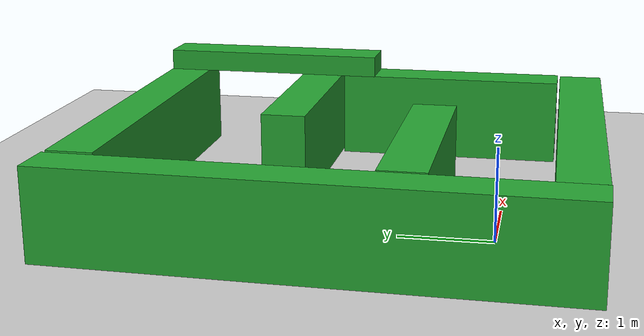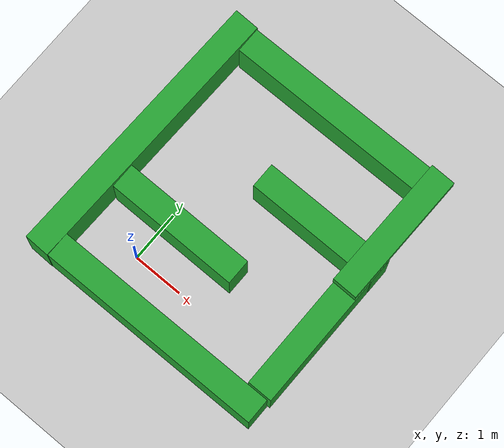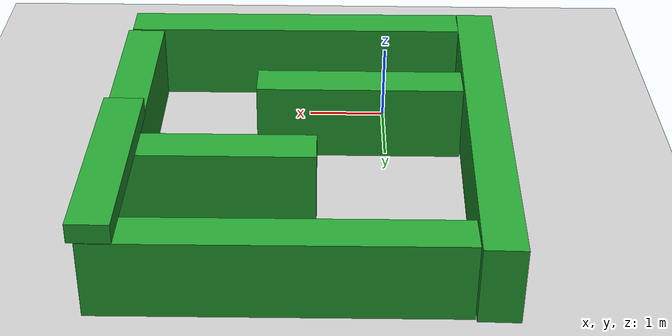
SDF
<?xml version="1.0"?>
<sdf version="1.6">
  <world name="default">
    <plugin
      filename="gz-sim-physics-system"
      name="gz::sim::systems::Physics">
    </plugin>
    <plugin
      filename="gz-sim-user-commands-system"
      name="gz::sim::systems::UserCommands">
    </plugin>
    <plugin
      filename="gz-sim-scene-broadcaster-system"
      name="gz::sim::systems::SceneBroadcaster">
    </plugin>
    <plugin
      filename="gz-sim-sensors-system"
      name="gz::sim::systems::Sensors">
      <render_engine>ogre2</render_engine>
    </plugin>
    <plugin
      filename="gz-sim-imu-system"
      name="gz::sim::systems::Imu">
    </plugin>
    <plugin
      filename="gz-sim-contact-system"
      name="gz::sim::systems::Contact">
    </plugin>

    <light name='sun' type='directional'>
      <cast_shadows>1</cast_shadows>
      <pose>0 0 10 0 -0 0</pose>
      <diffuse>0.8 0.8 0.8 1</diffuse>
      <specular>0.2 0.2 0.2 1</specular>
      <attenuation>
        <range>1000</range>
        <constant>0.9</constant>
        <linear>0.01</linear>
        <quadratic>0.001</quadratic>
      </attenuation>
      <direction>-0.5 0.1 -0.9</direction>
    </light>

    <model name='ground_plane'>
      <static>1</static>
      <link name='link'>
        <collision name='collision'>
          <geometry>
            <plane>
              <normal>0 0 1</normal>
              <size>100 100</size>
            </plane>
          </geometry>
          <surface>
            <contact>
              <collide_bitmask>65535</collide_bitmask>
              <ode/>
            </contact>
            <friction>
              <ode>
                <mu>100</mu>
                <mu2>50</mu2>
              </ode>
              <torsional>
                <ode/>
              </torsional>
            </friction>
            <bounce/>
          </surface>
          <max_contacts>10</max_contacts>
        </collision>
        <visual name='visual'>
          <cast_shadows>0</cast_shadows>
          <geometry>
            <plane>
              <normal>0 0 1</normal>
              <size>100 100</size>
            </plane>
          </geometry>
          <material>
            <script>
              <uri>file://media/materials/scripts/gazebo.material</uri>
              <name>Gazebo/Grey</name>
            </script>
          </material>
        </visual>
        <self_collide>0</self_collide>
        <enable_wind>0</enable_wind>
        <kinematic>0</kinematic>
      </link>
    </model>

    <gravity>0 0 -9.8</gravity>
    <magnetic_field>6e-06 2.3e-05 -4.2e-05</magnetic_field>
    <atmosphere type='adiabatic'/>
    <physics name='default_physics' default='0' type='ode'>
      <max_step_size>0.001</max_step_size>
      <real_time_factor>1</real_time_factor>
      <real_time_update_rate>1000</real_time_update_rate>
    </physics>
    <scene>
      <ambient>0.4 0.4 0.4 1</ambient>
      <background>0.7 0.7 0.7 1</background>
      <shadows>1</shadows>
    </scene>
    <wind/>
    <spherical_coordinates>
      <surface_model>EARTH_WGS84</surface_model>
      <latitude_deg>0</latitude_deg>
      <longitude_deg>0</longitude_deg>
      <elevation>0</elevation>
      <heading_deg>0</heading_deg>
    </spherical_coordinates>

    <model name='unit_box'>
      <static>1</static>

      <pose>0.353013 0.826531 0.499909 0 6.9e-05 -0.000578</pose>
      <scale>2.66432 0.498062 1</scale>

      <link name='link'>
        <inertial>
          <mass>1</mass>
          <inertia>
            <ixx>0.166667</ixx>
            <ixy>0</ixy>
            <ixz>0</ixz>
            <iyy>0.166667</iyy>
            <iyz>0</iyz>
            <izz>0.166667</izz>
          </inertia>

          <pose>0.353013 0.826531 0.499909 0 6.9e-05 -0.000578</pose>
          <velocity>0 0 0 0 -0 0</velocity>
          <acceleration>9.8 0.005017 -0 -0.024951 -1.34198 0</acceleration>
          <wrench>9.8 0.005017 -0 0 -0 0</wrench>

        </inertial>
        <collision name='collision'>
          <geometry>
            <box>
              <size>1 1 1</size>
            </box>
          </geometry>
          <max_contacts>10</max_contacts>
          <surface>
            <contact>
              <ode/>
            </contact>
            <bounce/>
            <friction>
              <torsional>
                <ode/>
              </torsional>
              <ode/>
            </friction>
          </surface>
        </collision>
        <visual name='visual'>
          <geometry>
            <box>
              <size>2.66432 0.498062 1</size>
            </box>
          </geometry>
          <material>
            <script>
              <name>Gazebo/Green</name>
              <uri>file://media/materials/scripts/gazebo.material</uri>
            </script>
          </material>
        </visual>
        <self_collide>0</self_collide>
        <enable_wind>0</enable_wind>
        <kinematic>0</kinematic>
      </link>
    </model>

    <model name='unit_box_clone'>
      <static>1</static>
      <pose>1.23043 -0.818596 0.498788 -4e-06 -0.000527 0.006302</pose>
      <scale>1.70179 1 1</scale>
      <link name='link'>
        <inertial>
          <mass>1</mass>
          <inertia>
            <ixx>0.166667</ixx>
            <ixy>0</ixy>
            <ixz>0</ixz>
            <iyy>0.166667</iyy>
            <iyz>0</iyz>
            <izz>0.166667</izz>
          </inertia>
          <pose >1.23043 -0.818596 0.498788 -4e-06 -0.000527 0.006302</pose>
          <velocity>0 0 0 0 -0 0</velocity>
          <acceleration>-9.8 0.015156 -0 -0.152771 1.04822 -3e-06</acceleration>
          <wrench>-9.8 0.015156 -0 0 -0 0</wrench>
        </inertial>
        <collision name='collision'>
          <geometry>
            <box>
              <size>4.53411 0.498062 1</size>
            </box>
          </geometry>
          <max_contacts>10</max_contacts>
          <surface>
            <contact>
              <ode/>
            </contact>
            <bounce/>
            <friction>
              <torsional>
                <ode/>
              </torsional>
              <ode/>
            </friction>
          </surface>
        </collision>
        <visual name='visual'>
          <geometry>
            <box>
              <size>4.53411 0.498062 1</size>
            </box>
          </geometry>
          <material>
            <script>
              <name>Gazebo/Green</name>
              <uri>file://media/materials/scripts/gazebo.material</uri>
            </script>
          </material>
        </visual>
        <self_collide>0</self_collide>
        <enable_wind>0</enable_wind>
        <kinematic>0</kinematic>
      </link>
    </model>

    <model name='unit_box_clone_0'>
      <static>1</static>
      <pose>3.30065 0.806126 0.499909 0 6.9e-05 -1.57151</pose>
      <scale>1 1 1</scale>
      <link name='link'>
        <inertial>
          <mass>1</mass>
          <inertia>
            <ixx>0.166667</ixx>
            <ixy>0</ixy>
            <ixz>0</ixz>
            <iyy>0.166667</iyy>
            <iyz>0</iyz>
            <izz>0.166667</izz>
          </inertia>
          <pose>3.30065 0.806126 0.499909 0 6.9e-05 -1.57151</pose>
          <velocity>1e-06 -0.009042 -0.022577 0.024462 5e-06 -1e-06</velocity>
          <acceleration>0.001849 -9.79998 -1.5e-05 -1.342 0.009746 1.5e-05</acceleration>
          <wrench>0.001849 -9.79998 -1.5e-05 0 -0 0</wrench>
        </inertial>
        <collision name='collision'>
          <geometry>
            <box>
              <size>2.66432 0.498062 1</size>
            </box>
          </geometry>
          <max_contacts>10</max_contacts>
          <surface>
            <contact>
              <ode/>
            </contact>
            <bounce/>
            <friction>
              <torsional>
                <ode/>
              </torsional>
              <ode/>
            </friction>
          </surface>
        </collision>
        <visual name='visual'>
          <geometry>
            <box>
              <size>2.66432 0.498062 1</size>
            </box>
          </geometry>
          <material>
            <script>
              <name>Gazebo/Green</name>
              <uri>file://media/materials/scripts/gazebo.material</uri>
            </script>
          </material>
        </visual>
        <self_collide>0</self_collide>
        <enable_wind>0</enable_wind>
        <kinematic>0</kinematic>
      </link>
    </model>

    <model name='unit_box_clone_clone'>
      <static>1</static>
      <pose>-1.23315 1.67536 0.49348 5.7e-05 -0.002522 -1.59332</pose>
      <scale>2.07131 1 1</scale>
      <link name='link'>
        <inertial>
          <mass>1</mass>
          <inertia>
            <ixx>0.166667</ixx>
            <ixy>0</ixy>
            <ixz>0</ixz>
            <iyy>0.166667</iyy>
            <iyz>0</iyz>
            <izz>0.166667</izz>
          </inertia>
          <pose>-1.23315 1.67536 0.49348 5.7e-05 -0.002522 -1.59332</pose>
          <velocity>1e-06 0.0049 -0.283169 -0.085826 2e-05 3e-06</velocity>
          <acceleration>0.002539 9.8 0 -2.00571 0.039412 0</acceleration>
          <wrench>0.002539 9.8 0 0 -0 0</wrench>
        </inertial>
        <collision name='collision'>
          <geometry>
            <box>
              <size>5.51863 0.498062 1</size>
            </box>
          </geometry>
          <max_contacts>10</max_contacts>
          <surface>
            <contact>
              <ode/>
            </contact>
            <bounce/>
            <friction>
              <torsional>
                <ode/>
              </torsional>
              <ode/>
            </friction>
          </surface>
        </collision>
        <visual name='visual'>
          <geometry>
            <box>
              <size>5.51863 0.498062 1</size>
            </box>
          </geometry>
          <material>
            <script>
              <name>Gazebo/Green</name>
              <uri>file://media/materials/scripts/gazebo.material</uri>
            </script>
          </material>
        </visual>
        <self_collide>0</self_collide>
        <enable_wind>0</enable_wind>
        <kinematic>0</kinematic>
      </link>
    </model>

    <model name='unit_box_clone_0_clone'>
      <static>1</static>
      <pose>3.29881 3.07925 1.123 -1e-05 -5e-05 -1.58167</pose>
      <scale>1 1 0.246064</scale>
      <link name='link'>
        <inertial>
          <mass>1</mass>
          <inertia>
            <ixx>0.166667</ixx>
            <ixy>0</ixy>
            <ixz>0</ixz>
            <iyy>0.166667</iyy>
            <iyz>0</iyz>
            <izz>0.166667</izz>
          </inertia>
          <pose>3.29881 3.07925 1.123 -1e-05 -5e-05 -1.58167</pose>
          <velocity>0.000308 0.001774 -0.022384 -0.018138 0.014388 -0.005458</velocity>
          <acceleration>0 0 -9.8 0 -0 0</acceleration>
          <wrench>0 0 -9.8 0 -0 0</wrench>
        </inertial>
        <collision name='collision'>
          <geometry>
            <box>
              <size>2.66432 0.498062 0.246064</size>
            </box>
          </geometry>
          <max_contacts>10</max_contacts>
          <surface>
            <contact>
              <ode/>
            </contact>
            <bounce/>
            <friction>
              <torsional>
                <ode/>
              </torsional>
              <ode/>
            </friction>
          </surface>
        </collision>
        <visual name='visual'>
          <geometry>
            <box>
              <size>2.66432 0.498062 0.246064</size>
            </box>
          </geometry>
          <material>
            <script>
              <name>Gazebo/Green</name>
              <uri>file://media/materials/scripts/gazebo.material</uri>
            </script>
          </material>
        </visual>
        <self_collide>0</self_collide>
        <enable_wind>0</enable_wind>
        <kinematic>0</kinematic>
      </link>
    </model>

    <model name='unit_box_clone_clone_0'>
      <static>1</static>
      <pose>1.2878 4.16034 0.499946 9e-06 -2.6e-05 0.005499</pose>
      <scale>1 1 1</scale>
      <link name='link'>
        <inertial>
          <mass>1</mass>
          <inertia>
            <ixx>0.166667</ixx>
            <ixy>0</ixy>
            <ixz>0</ixz>
            <iyy>0.166667</iyy>
            <iyz>0</iyz>
            <izz>0.166667</izz>
          </inertia>
          <pose>1.2878 4.16034 0.499946 9e-06 -2.6e-05 0.005499</pose>
          <velocity>-0.003333 -5.2e-05 -0.010257 -0.002551 -0.014729 0.000997</velocity>
          <acceleration>-4.02504 0.939119 -5.77496 3.09602 -1.24877 1.50216</acceleration>
          <wrench>-4.02504 0.939119 -5.77496 0 -0 0</wrench>
        </inertial>
        <collision name='collision'>
          <geometry>
            <box>
              <size>4.38648 0.498062 1</size>
            </box>
          </geometry>
          <max_contacts>10</max_contacts>
          <surface>
            <contact>
              <ode/>
            </contact>
            <bounce/>
            <friction>
              <torsional>
                <ode/>
              </torsional>
              <ode/>
            </friction>
          </surface>
        </collision>
        <visual name='visual'>
          <geometry>
            <box>
              <size>4.38648 0.498062 1</size>
            </box>
          </geometry>
          <material>
            <script>
              <name>Gazebo/Green</name>
              <uri>file://media/materials/scripts/gazebo.material</uri>
            </script>
          </material>
        </visual>
        <self_collide>0</self_collide>
        <enable_wind>0</enable_wind>
        <kinematic>0</kinematic>
      </link>
    </model>

    <model name='unit_box_clone_0_clone_0'>
      <static>1</static>
      <pose>2.22048 2.4195 0.499987 8e-06 -1.1e-05 0.000295</pose>
      <scale>1 1 1</scale>
      <link name='link'>
        <inertial>
          <mass>1</mass>
          <inertia>
            <ixx>0.166667</ixx>
            <ixy>0</ixy>
            <ixz>0</ixz>
            <iyy>0.166667</iyy>
            <iyz>0</iyz>
            <izz>0.166667</izz>
          </inertia>
          <pose>2.22048 2.4195 0.499987 8e-06 -1.1e-05 0.000295</pose>
          <velocity>-0.003862 -0.001941 -0.02645 9.7e-05 -0.016618 0.000862</velocity>
          <acceleration>-3.00245 0.293784 -6.79755 3.04038 0.890264 -0.256649</acceleration>
          <wrench>-3.00245 0.293784 -6.79755 0 -0 0</wrench>
        </inertial>
        <collision name='collision'>
          <geometry>
            <box>
              <size>2.66432 0.498062 1</size>
            </box>
          </geometry>
          <max_contacts>10</max_contacts>
          <surface>
            <contact>
              <ode/>
            </contact>
            <bounce/>
            <friction>
              <torsional>
                <ode/>
              </torsional>
              <ode/>
            </friction>
          </surface>
        </collision>
        <visual name='visual'>
          <geometry>
            <box>
              <size>2.66432 0.498062 1</size>
            </box>
          </geometry>
          <material>
            <script>
              <name>Gazebo/Green</name>
              <uri>file://media/materials/scripts/gazebo.material</uri>
            </script>
          </material>
        </visual>
        <self_collide>0</self_collide>
        <enable_wind>0</enable_wind>
        <kinematic>0</kinematic>
      </link>
    </model>

    <gui fullscreen='0'>
      <camera name='user_camera'>
        <pose>-2.3439 2.21437 13.2038 0 1.3018 -0.247879</pose>
        <view_controller>orbit</view_controller>
        <projection_type>perspective</projection_type>
      </camera>
    </gui>

  </world>
</sdf>
